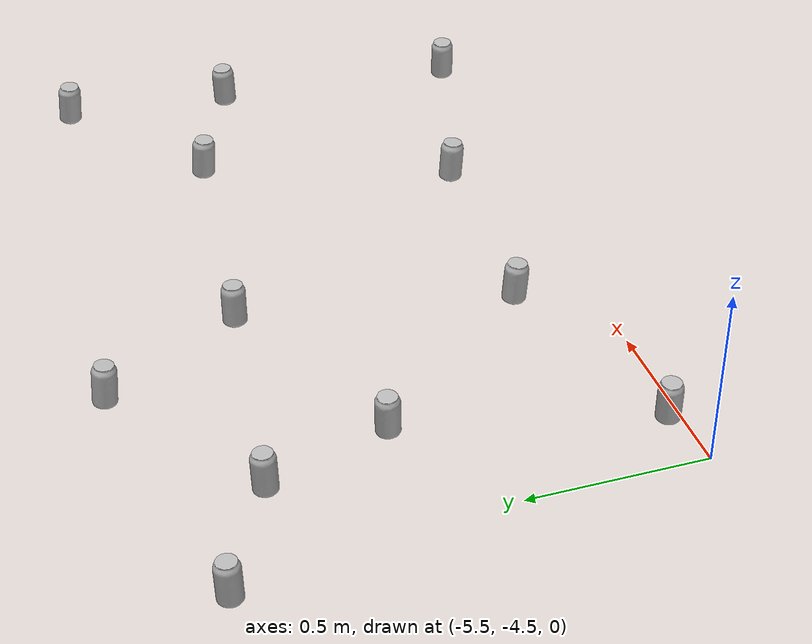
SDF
<sdf version="1.6">
 <world name="default">
  <model name="coke_can55">
   <link name="link">
    <inertial>
     <pose>0 0 0.06 0 -0 0</pose>
     <mass>0.39</mass>
     <inertia>
      <ixx>0.00055575</ixx>
      <ixy>0</ixy>
      <ixz>0</ixz>
      <iyy>0.00055575</iyy>
      <iyz>0</iyz>
      <izz>0.0001755</izz>
     </inertia>
    </inertial>
    <collision name="collision">
     <pose>0.003937 0.004724 -0.18 0 -0 0</pose>
     <geometry><mesh><uri>model://coke_can/meshes/coke_can.dae</uri></mesh></geometry>
     <surface>
      <friction><ode><mu>1</mu><mu2>1</mu2></ode></friction>
      <contact>
       <ode><kp>1e+07</kp><kd>1</kd><min_depth>0.001</min_depth><max_vel>0.1</max_vel></ode>
       <collide_bitmask>256</collide_bitmask>
      </contact>
     </surface>
    </collision>
    <visual name="visual">
     <pose>0.003937 0.004724 -0.18 0 -0 0</pose>
     <geometry><mesh><uri>model://coke_can/meshes/coke_can.dae</uri></mesh></geometry>
    </visual>
   </link>
   <pose>-5.27038 -3.41533 -0.002659 -0.055093 0.007757 -0.274076</pose>
  </model>
  <model name="coke_can219">
   <link name="link">
    <inertial>
     <pose>0 0 0.06 0 -0 0</pose>
     <mass>0.39</mass>
     <inertia>
      <ixx>0.00055575</ixx>
      <ixy>0</ixy>
      <ixz>0</ixz>
      <iyy>0.00055575</iyy>
      <iyz>0</iyz>
      <izz>0.0001755</izz>
     </inertia>
    </inertial>
    <collision name="collision">
     <pose>0.003937 0.004724 -0.18 0 -0 0</pose>
     <geometry><mesh><uri>model://coke_can/meshes/coke_can.dae</uri></mesh></geometry>
     <surface>
      <friction><ode><mu>1</mu><mu2>1</mu2></ode></friction>
      <contact>
       <ode><kp>1e+07</kp><kd>1</kd><min_depth>0.001</min_depth><max_vel>0.1</max_vel></ode>
       <collide_bitmask>256</collide_bitmask>
      </contact>
     </surface>
    </collision>
    <visual name="visual">
     <pose>0.003937 0.004724 -0.18 0 -0 0</pose>
     <geometry><mesh><uri>model://coke_can/meshes/coke_can.dae</uri></mesh></geometry>
    </visual>
   </link>
   <pose>-4.73323 -4.28071 -0.002659 -0.055121 0.007736 -3.0786</pose>
  </model>
  <model name="coke_can233">
   <link name="link">
    <inertial>
     <pose>0 0 0.06 0 -0 0</pose>
     <mass>0.39</mass>
     <inertia>
      <ixx>0.00055575</ixx>
      <ixy>0</ixy>
      <ixz>0</ixz>
      <iyy>0.00055575</iyy>
      <iyz>0</iyz>
      <izz>0.0001755</izz>
     </inertia>
    </inertial>
    <collision name="collision">
     <pose>0.003937 0.004724 -0.18 0 -0 0</pose>
     <geometry><mesh><uri>model://coke_can/meshes/coke_can.dae</uri></mesh></geometry>
     <surface>
      <friction><ode><mu>1</mu><mu2>1</mu2></ode></friction>
      <contact>
       <ode><kp>1e+07</kp><kd>1</kd><min_depth>0.001</min_depth><max_vel>0.1</max_vel></ode>
       <collide_bitmask>256</collide_bitmask>
      </contact>
     </surface>
    </collision>
    <visual name="visual">
     <pose>0.003937 0.004724 -0.18 0 -0 0</pose>
     <geometry><mesh><uri>model://coke_can/meshes/coke_can.dae</uri></mesh></geometry>
    </visual>
   </link>
   <pose>-3.85863 -3.63259 -0.002659 -0.055086 0.007759 2.73471</pose>
  </model>
  <model name="coke_can351">
   <link name="link">
    <inertial>
     <pose>0 0 0.06 0 -0 0</pose>
     <mass>0.39</mass>
     <inertia>
      <ixx>0.00055575</ixx>
      <ixy>0</ixy>
      <ixz>0</ixz>
      <iyy>0.00055575</iyy>
      <iyz>0</iyz>
      <izz>0.0001755</izz>
     </inertia>
    </inertial>
    <collision name="collision">
     <pose>0.003937 0.004724 -0.18 0 -0 0</pose>
     <geometry><mesh><uri>model://coke_can/meshes/coke_can.dae</uri></mesh></geometry>
     <surface>
      <friction><ode><mu>1</mu><mu2>1</mu2></ode></friction>
      <contact>
       <ode><kp>1e+07</kp><kd>1</kd><min_depth>0.001</min_depth><max_vel>0.1</max_vel></ode>
       <collide_bitmask>256</collide_bitmask>
      </contact>
     </surface>
    </collision>
    <visual name="visual">
     <pose>0.003937 0.004724 -0.18 0 -0 0</pose>
     <geometry><mesh><uri>model://coke_can/meshes/coke_can.dae</uri></mesh></geometry>
    </visual>
   </link>
   <pose>-4.10601 -4.32904 -0.002659 -0.055136 0.007722 -2.76127</pose>
  </model>
  <model name="coke_can371">
   <link name="link">
    <inertial>
     <pose>0 0 0.06 0 -0 0</pose>
     <mass>0.39</mass>
     <inertia>
      <ixx>0.00055575</ixx>
      <ixy>0</ixy>
      <ixz>0</ixz>
      <iyy>0.00055575</iyy>
      <iyz>0</iyz>
      <izz>0.0001755</izz>
     </inertia>
    </inertial>
    <collision name="collision">
     <pose>0.003937 0.004724 -0.18 0 -0 0</pose>
     <geometry><mesh><uri>model://coke_can/meshes/coke_can.dae</uri></mesh></geometry>
     <surface>
      <friction><ode><mu>1</mu><mu2>1</mu2></ode></friction>
      <contact>
       <ode><kp>1e+07</kp><kd>1</kd><min_depth>0.001</min_depth><max_vel>0.1</max_vel></ode>
       <collide_bitmask>256</collide_bitmask>
      </contact>
     </surface>
    </collision>
    <visual name="visual">
     <pose>0.003937 0.004724 -0.18 0 -0 0</pose>
     <geometry><mesh><uri>model://coke_can/meshes/coke_can.dae</uri></mesh></geometry>
    </visual>
   </link>
   <pose>-5.15644 -3.76895 -0.002659 -0.055096 0.007752 0.930466</pose>
  </model>
  <model name="coke_can443">
   <link name="link">
    <inertial>
     <pose>0 0 0.06 0 -0 0</pose>
     <mass>0.39</mass>
     <inertia>
      <ixx>0.00055575</ixx>
      <ixy>0</ixy>
      <ixz>0</ixz>
      <iyy>0.00055575</iyy>
      <iyz>0</iyz>
      <izz>0.0001755</izz>
     </inertia>
    </inertial>
    <collision name="collision">
     <pose>0.003937 0.004724 -0.18 0 -0 0</pose>
     <geometry><mesh><uri>model://coke_can/meshes/coke_can.dae</uri></mesh></geometry>
     <surface>
      <friction><ode><mu>1</mu><mu2>1</mu2></ode></friction>
      <contact>
       <ode><kp>1e+07</kp><kd>1</kd><min_depth>0.001</min_depth><max_vel>0.1</max_vel></ode>
       <collide_bitmask>256</collide_bitmask>
      </contact>
     </surface>
    </collision>
    <visual name="visual">
     <pose>0.003937 0.004724 -0.18 0 -0 0</pose>
     <geometry><mesh><uri>model://coke_can/meshes/coke_can.dae</uri></mesh></geometry>
    </visual>
   </link>
   <pose>-5.60121 -3.23439 -0.002659 -0.055097 0.007753 -0.200387</pose>
  </model>
  <model name="coke_can462">
   <link name="link">
    <inertial>
     <pose>0 0 0.06 0 -0 0</pose>
     <mass>0.39</mass>
     <inertia>
      <ixx>0.00055575</ixx>
      <ixy>0</ixy>
      <ixz>0</ixz>
      <iyy>0.00055575</iyy>
      <iyz>0</iyz>
      <izz>0.0001755</izz>
     </inertia>
    </inertial>
    <collision name="collision">
     <pose>0.003937 0.004724 -0.18 0 -0 0</pose>
     <geometry><mesh><uri>model://coke_can/meshes/coke_can.dae</uri></mesh></geometry>
     <surface>
      <friction><ode><mu>1</mu><mu2>1</mu2></ode></friction>
      <contact>
       <ode><kp>1e+07</kp><kd>1</kd><min_depth>0.001</min_depth><max_vel>0.1</max_vel></ode>
       <collide_bitmask>256</collide_bitmask>
      </contact>
     </surface>
    </collision>
    <visual name="visual">
     <pose>0.003937 0.004724 -0.18 0 -0 0</pose>
     <geometry><mesh><uri>model://coke_can/meshes/coke_can.dae</uri></mesh></geometry>
    </visual>
   </link>
   <pose>-3.43185 -3.31717 -0.002659 -0.05509 0.007757 2.4538</pose>
  </model>
  <model name="coke_can474">
   <link name="link">
    <inertial>
     <pose>0 0 0.06 0 -0 0</pose>
     <mass>0.39</mass>
     <inertia>
      <ixx>0.00055575</ixx>
      <ixy>0</ixy>
      <ixz>0</ixz>
      <iyy>0.00055575</iyy>
      <iyz>0</iyz>
      <izz>0.0001755</izz>
     </inertia>
    </inertial>
    <collision name="collision">
     <pose>0.003937 0.004724 -0.18 0 -0 0</pose>
     <geometry><mesh><uri>model://coke_can/meshes/coke_can.dae</uri></mesh></geometry>
     <surface>
      <friction><ode><mu>1</mu><mu2>1</mu2></ode></friction>
      <contact>
       <ode><kp>1e+07</kp><kd>1</kd><min_depth>0.001</min_depth><max_vel>0.1</max_vel></ode>
       <collide_bitmask>256</collide_bitmask>
      </contact>
     </surface>
    </collision>
    <visual name="visual">
     <pose>0.003937 0.004724 -0.18 0 -0 0</pose>
     <geometry><mesh><uri>model://coke_can/meshes/coke_can.dae</uri></mesh></geometry>
    </visual>
   </link>
   <pose>-4.82305 -3.11623 -0.002659 -0.055115 0.00774 -2.46287</pose>
  </model>
  <model name="coke_can578">
   <link name="link">
    <inertial>
     <pose>0 0 0.06 0 -0 0</pose>
     <mass>0.39</mass>
     <inertia>
      <ixx>0.00055575</ixx>
      <ixy>0</ixy>
      <ixz>0</ixz>
      <iyy>0.00055575</iyy>
      <iyz>0</iyz>
      <izz>0.0001755</izz>
     </inertia>
    </inertial>
    <collision name="collision">
     <pose>0.003937 0.004724 -0.18 0 -0 0</pose>
     <geometry><mesh><uri>model://coke_can/meshes/coke_can.dae</uri></mesh></geometry>
     <surface>
      <friction><ode><mu>1</mu><mu2>1</mu2></ode></friction>
      <contact>
       <ode><kp>1e+07</kp><kd>1</kd><min_depth>0.001</min_depth><max_vel>0.1</max_vel></ode>
       <collide_bitmask>256</collide_bitmask>
      </contact>
     </surface>
    </collision>
    <visual name="visual">
     <pose>0.003937 0.004724 -0.18 0 -0 0</pose>
     <geometry><mesh><uri>model://coke_can/meshes/coke_can.dae</uri></mesh></geometry>
    </visual>
   </link>
   <pose>-5.32606 -4.46364 -0.002659 -0.055097 0.007752 1.30781</pose>
  </model>
  <model name="coke_can589">
   <link name="link">
    <inertial>
     <pose>0 0 0.06 0 -0 0</pose>
     <mass>0.39</mass>
     <inertia>
      <ixx>0.00055575</ixx>
      <ixy>0</ixy>
      <ixz>0</ixz>
      <iyy>0.00055575</iyy>
      <iyz>0</iyz>
      <izz>0.0001755</izz>
     </inertia>
    </inertial>
    <collision name="collision">
     <pose>0.003937 0.004724 -0.18 0 -0 0</pose>
     <geometry><mesh><uri>model://coke_can/meshes/coke_can.dae</uri></mesh></geometry>
     <surface>
      <friction><ode><mu>1</mu><mu2>1</mu2></ode></friction>
      <contact>
       <ode><kp>1e+07</kp><kd>1</kd><min_depth>0.001</min_depth><max_vel>0.1</max_vel></ode>
       <collide_bitmask>256</collide_bitmask>
      </contact>
     </surface>
    </collision>
    <visual name="visual">
     <pose>0.003937 0.004724 -0.18 0 -0 0</pose>
     <geometry><mesh><uri>model://coke_can/meshes/coke_can.dae</uri></mesh></geometry>
    </visual>
   </link>
   <pose>-3.47288 -3.80594 -0.002659 -0.055136 0.007725 0.197341</pose>
  </model>
  <model name="coke_can609">
   <link name="link">
    <inertial>
     <pose>0 0 0.06 0 -0 0</pose>
     <mass>0.39</mass>
     <inertia>
      <ixx>0.00055575</ixx>
      <ixy>0</ixy>
      <ixz>0</ixz>
      <iyy>0.00055575</iyy>
      <iyz>0</iyz>
      <izz>0.0001755</izz>
     </inertia>
    </inertial>
    <collision name="collision">
     <pose>0.003937 0.004724 -0.18 0 -0 0</pose>
     <geometry><mesh><uri>model://coke_can/meshes/coke_can.dae</uri></mesh></geometry>
     <surface>
      <friction><ode><mu>1</mu><mu2>1</mu2></ode></friction>
      <contact>
       <ode><kp>1e+07</kp><kd>1</kd><min_depth>0.001</min_depth><max_vel>0.1</max_vel></ode>
       <collide_bitmask>256</collide_bitmask>
      </contact>
     </surface>
    </collision>
    <visual name="visual">
     <pose>0.003937 0.004724 -0.18 0 -0 0</pose>
     <geometry><mesh><uri>model://coke_can/meshes/coke_can.dae</uri></mesh></geometry>
    </visual>
   </link>
   <pose>-4.59479 -3.52609 -0.002659 -0.055123 0.007734 -1.06739</pose>
  </model>
  <model name="coke_can782">
   <link name="link">
    <inertial>
     <pose>0 0 0.06 0 -0 0</pose>
     <mass>0.39</mass>
     <inertia>
      <ixx>0.00055575</ixx>
      <ixy>0</ixy>
      <ixz>0</ixz>
      <iyy>0.00055575</iyy>
      <iyz>0</iyz>
      <izz>0.0001755</izz>
     </inertia>
    </inertial>
    <collision name="collision">
     <pose>0.003937 0.004724 -0.18 0 -0 0</pose>
     <geometry><mesh><uri>model://coke_can/meshes/coke_can.dae</uri></mesh></geometry>
     <surface>
      <friction><ode><mu>1</mu><mu2>1</mu2></ode></friction>
      <contact>
       <ode><kp>1e+07</kp><kd>1</kd><min_depth>0.001</min_depth><max_vel>0.1</max_vel></ode>
       <collide_bitmask>256</collide_bitmask>
      </contact>
     </surface>
    </collision>
    <visual name="visual">
     <pose>0.003937 0.004724 -0.18 0 -0 0</pose>
     <geometry><mesh><uri>model://coke_can/meshes/coke_can.dae</uri></mesh></geometry>
    </visual>
   </link>
   <pose>-3.52778 -4.51485 -0.002659 -0.055096 0.007751 1.30782</pose>
  </model>
 </world>
</sdf>
